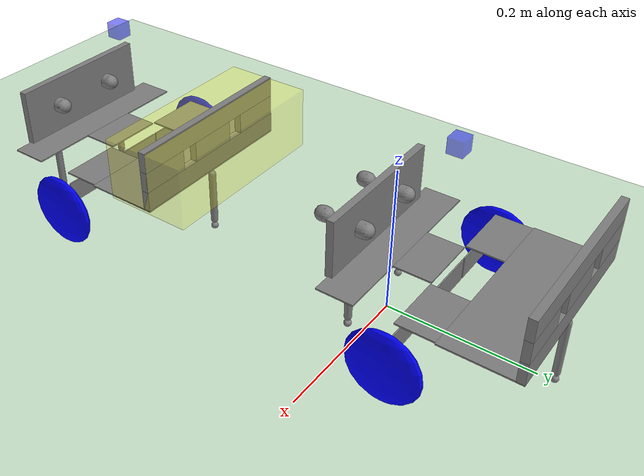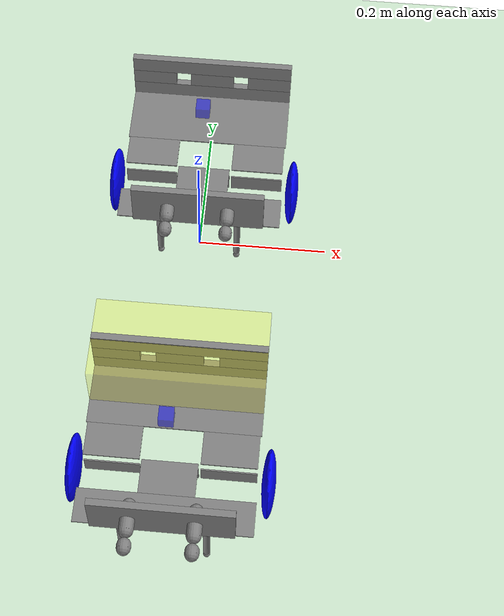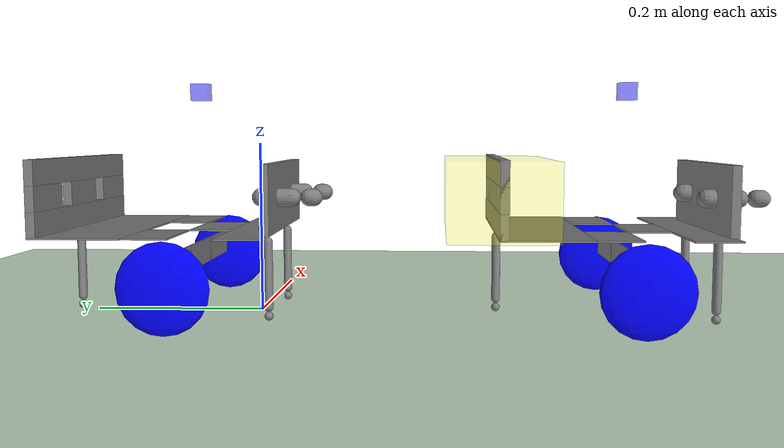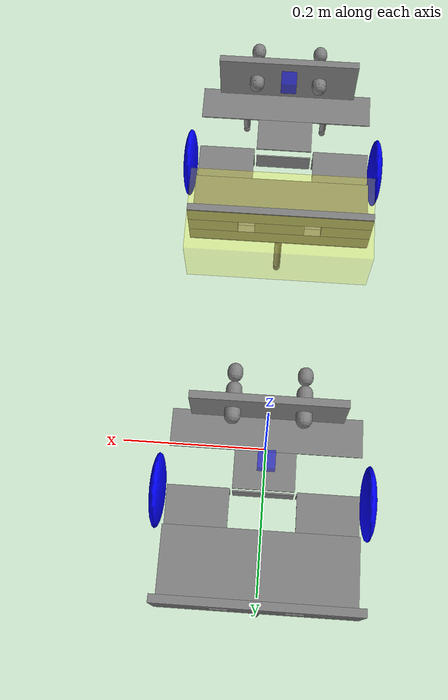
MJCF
<?xml version="1.0" ?>
<mujoco>
    <asset>
        <texture builtin="gradient" height="100" rgb1="1 1 1" rgb2="0 0 0" type="skybox" width="100"/>
        <texture builtin="flat" height="1278" mark="cross" markrgb="1 1 1" name="texgeom" random="0.01" rgb1="0.8 0.6 0.4" rgb2="0.8 0.6 0.4" type="cube" width="127"/>
        <texture builtin="checker" height="100" name="texplane" rgb1="0 0 0" rgb2="0.8 0.8 0.8" type="2d" width="100"/>
        <material name="MatPlane" reflectance="0.5" shininess="1" specular="1" texrepeat="60 60" texture="texplane"/>
        <material name="geom" texture="texgeom" texuniform="true"/>
        <mesh file="joint_socket.stl" name= "joint_socket" scale="0.001 0.001 0.001"></mesh>

    </asset>
    <size nconmax="200" njmax="1000"/>

    <default>
    </default>
    <visual>
        <map znear="0.055" zfar="20"/>
        <quality offsamples="8"/>
    </visual>
    <option timestep="0.0001" impratio="500" />

    <worldbody>

        <light cutoff="100" diffuse="1 1 1" dir="-0 0 -1.3" directional="true" exponent="1" pos="0 0 1.3" specular=".1 .1 .1"/>
        <geom material="MatPlane" name="floor" pos="0 0 0" rgba="0.8 0.9 0.8 1" size="5 5 0.1" type="plane"/>
        <body pos="0 0 0.05">
            <joint type="free" name="bot_1"/>
            <geom type="box" pos="0 0 0.05" size="0.125 0.025 0.001"/>

            <body pos="0 0.07 0.21">
                <site name = "camera_1" type="box" pos="0 0 0" size="0.01 0.01 0.01" rgba="0 0 1 0.5"/>
                <camera euler="-90 0 0" fovy="90" name="camera_front_1" pos="0 0 0"></camera>
                <camera euler="-90 180 0" fovy="90" name="camera_back_1" pos="0 0 0"></camera>
            </body>

            <body name="plug_1">
                <geom type="capsule" size="0.0105" fromto="0.0455 -0.01 0.089 0.0455 -0.045 0.089" />
                <body name="left_plug_1">
                    <joint name="plug_left_1" type="hinge" axis="0 0 1" pos="0.0455 -0.045 0.089" limited="true" range="0 90" />
                    <geom type="capsule" size="0.01" fromto="0.0455 -0.0651 0.089 0.0455 -0.07 0.089" />
                </body>
                <geom type="box" size="0.1 0.005 0.0391" pos="0 -0.024 0.089"></geom>
                <geom type="capsule" size="0.0105" fromto="-0.0455 -0.01 0.089 -0.0455 -0.045 0.089" />
                <body name="right_plug_1">
                    <joint name="plug_right_1" type="hinge" axis="0 0 1" pos="-0.0455 -0.045 0.089" limited="true" range="-90 0" />
                    <geom type="capsule" size="0.01" fromto="-0.0455 -0.0651 0.089 -0.0455 -0.07 0.089" />
                </body>
            </body>

            <body pos="0.06 -0.02 0 ">
                <joint name="support_fr_1" type="hinge" axis="1 0 0" pos="0 0 0.04" limited="true" range="-90 0"/>
                <geom type="capsule" size="0.005" fromto="0 0 0.04 0 0 -0.035" />
                <body>
                    <joint pos="0 0 -0.045" type="ball"/>
                    <geom type="sphere" size="0.005" pos="0 0 -0.045"/>
                </body>
            </body>
            <body pos="-0.06 -0.02 0 ">
                <joint name="support_fl_1" type="hinge" axis="1 0 0" pos="0 0 0.04" limited="true" range="-90 0"/>
                <geom type="capsule" size="0.005" fromto="0 0 0.04 0 0 -0.035" />
                <body>
                    <joint pos="0 0 -0.045" type="ball"/>
                    <geom type="sphere" size="0.005" pos="0 0 -0.045"/>
                </body>
            </body>

            <geom type="box" pos="0 0.05 0.05" size="0.04 0.025 0.001"/>
            <geom type="box" pos="0 0.075 0.0175" size="0.04 0.001 0.015"/>
            <body>
                <joint type="hinge" pos="0 0.075 0" axis="1 0 0" springdamper="1.5 0.01" limited="true" range="-90 90" />
                <geom type="box" pos="0.083 0.075 0.0175" size="0.04 0.001 0.015"/>
                <geom type="box" pos="-0.083 0.075 0.0175" size="0.04 0.001 0.015"/>
                <geom type="box" pos="0.083 0.1 0.05" size="0.04 0.025 0.001"/>
                <geom type="box" pos="-0.083 0.1 0.05" size="0.04 0.025 0.001"/>
                <geom type="box" pos="0 0.175 0.05" size="0.125 0.05 0.001"/>

                <body name="socket_1">
                    <geom type="box" pos="0 0.22 0.064" size="0.125 0.005 0.014"></geom>
                    <geom type="box" pos="0.091 0.22 0.092" size="0.034 0.005 0.014"></geom>
                    <geom type="box" pos="0 0.22 0.092" size="0.034 0.005 0.014"></geom>
                    <geom type="box" pos="-0.091 0.22 0.092" size="0.034 0.005 0.014"></geom>
                    <geom type="box" pos="0 0.22 0.12" size="0.125 0.005 0.014"></geom>
                </body>

                <body pos="0 0.22 0 ">
                    <joint name="support_b_1" type="hinge" axis="1 0 0" pos="0 0 0.04" limited="true" range="0 90"/>
                    <geom type="capsule" size="0.005" fromto="0 0 0.04 0 0 -0.035" />
                    <body>
                        <joint pos="0 0 -0.045" type="ball"/>
                        <geom type="sphere" size="0.005" pos="0 0 -0.045"/>
                    </body>
                </body>
            </body>
            <body>
                <joint name="RW1" type="hinge" axis="1 0 0" pos="-0.14 0.075 0"/>
                <geom type="ellipsoid" size="0.01 0.05 0.05" rgba="0 0 1 1" pos="0.14 0.075 0"/>
            </body>
            <body>
                <joint name ="LW1" type="hinge" axis="1 0 0" pos="0.14 0.075 0"/>
                <geom type="ellipsoid" size="0.01 0.05 0.05" rgba="0 0 1 1" pos="-0.14 0.075 0"/>
            </body>
        </body>

        <body pos="0 -0.5 0.05">
            <joint type="free" name="bot_2"/>
            <geom type="box" pos="0 0 0.05" size="0.125 0.025 0.001"/>

            <body pos="0 0.07 0.21">
                <site name = "camera_2" type="box" pos="0 0 0" size="0.01 0.01 0.01" rgba="0 0 1 0.5"/>
                <camera euler="-90 0 0" fovy="90" name="camera_front_2" pos="0 0 0"></camera>
                <camera euler="-90 180 0" fovy="90" name="camera_back_2" pos="0 0 0"></camera>
            </body>

            <body name="plug_2">
                <geom type="capsule" size="0.0105" fromto="0.0455 -0.01 0.089 0.0455 -0.045 0.089" />
                <body name="left_plug_2">
                    <joint name="plug_left_2" type="hinge" axis="0 0 1" pos="0.0455 -0.045 0.089" limited="true" range="0 90" />
                    <geom type="capsule" size="0.01" fromto="0.0455 -0.0651 0.089 0.0455 -0.07 0.089" />
                </body>
                <geom type="box" size="0.1 0.005 0.0391" pos="0 -0.024 0.089"></geom>
                <geom type="capsule" size="0.0105" fromto="-0.0455 -0.01 0.089 -0.0455 -0.045 0.089" />
                <body name="right_plug_2">
                    <joint name="plug_right_2" type="hinge" axis="0 0 1" pos="-0.0455 -0.045 0.089" limited="true" range="-90 0" />
                    <geom type="capsule" size="0.01" fromto="-0.0455 -0.0651 0.089 -0.0455 -0.07 0.089" />
                </body>
            </body>

            <body pos="0.06 -0.02 0 ">
                <joint name="support_fr_2" type="hinge" axis="1 0 0" pos="0 0 0.04" limited="true" range="-90 0"/>
                <geom type="capsule" size="0.005" fromto="0 0 0.04 0 0 -0.035" />
                <body>
                    <joint pos="0 0 -0.045" type="ball"/>
                    <geom type="sphere" size="0.005" pos="0 0 -0.045"/>
                </body>
            </body>
            <body pos="-0.06 -0.02 0 ">
                <joint name="support_fl_2" type="hinge" axis="1 0 0" pos="0 0 0.04" limited="true" range="-90 0"/>
                <geom type="capsule" size="0.005" fromto="0 0 0.04 0 0 -0.035" />
                <body>
                    <joint pos="0 0 -0.045" type="ball"/>
                    <geom type="sphere" size="0.005" pos="0 0 -0.045"/>
                </body>
            </body>

            <geom type="box" pos="0 0.05 0.05" size="0.04 0.025 0.001"/>
            <geom type="box" pos="0 0.075 0.0175" size="0.04 0.001 0.015"/>
            <body>
                <joint type="hinge" pos="0 0.075 0" axis="1 0 0" springdamper="1.5 0.01" limited="true" range="-90 90" />
                <geom type="box" pos="0.083 0.075 0.0175" size="0.04 0.001 0.015"/>
                <geom type="box" pos="-0.083 0.075 0.0175" size="0.04 0.001 0.015"/>
                <geom type="box" pos="0.083 0.1 0.05" size="0.04 0.025 0.001"/>
                <geom type="box" pos="-0.083 0.1 0.05" size="0.04 0.025 0.001"/>
                <geom type="box" pos="0 0.175 0.05" size="0.125 0.05 0.001"/>

                <site name="contact_sensor_1" type="box" pos="0 0.22 0.089" size="0.125 0.06 0.043" rgba="1 1 0 0.25"/>

                <body name="socket_2">
                    <geom type="box" pos="0 0.22 0.064" size="0.125 0.005 0.014"></geom>
                    <geom type="box" pos="0.091 0.22 0.092" size="0.034 0.005 0.014"></geom>
                    <geom type="box" pos="0 0.22 0.092" size="0.034 0.005 0.014"></geom>
                    <geom type="box" pos="-0.091 0.22 0.092" size="0.034 0.005 0.014"></geom>
                    <geom type="box" pos="0 0.22 0.12" size="0.125 0.005 0.014"></geom>
                </body>

                <body pos="0 0.22 0 ">
                    <joint name="support_b_2" type="hinge" axis="1 0 0" pos="0 0 0.04" limited="true" range="0 90"/>
                    <geom type="capsule" size="0.005" fromto="0 0 0.04 0 0 -0.035" />
                    <body>
                        <joint pos="0 0 -0.045" type="ball"/>
                        <geom type="sphere" size="0.005" pos="0 0 -0.045"/>
                    </body>
                </body>
            </body>
            <body>
                <joint name="RW2" type="hinge" axis="1 0 0" pos="-0.14 0.075 0"/>
                <geom type="ellipsoid" size="0.01 0.05 0.05" rgba="0 0 1 1" pos="0.14 0.075 0"/>
            </body>
            <body>
                <joint name ="LW2" type="hinge" axis="1 0 0" pos="0.14 0.075 0"/>
                <geom type="ellipsoid" size="0.01 0.05 0.05" rgba="0 0 1 1" pos="-0.14 0.075 0"/>
            </body>
        </body>

    </worldbody>
    <actuator>
        <velocity joint="LW1" ctrllimited="true" ctrlrange="-10 10"/>
        <velocity joint="RW1" ctrllimited="true" ctrlrange="-10 10"/>
        <motor joint="support_fr_1"/>
        <motor joint="support_fl_1"/>
        <motor joint="support_b_1"/>
        <motor joint="plug_left_1"/>
        <motor joint="plug_right_1"/>
        <velocity joint="LW2" ctrllimited="true" ctrlrange="-10 10"/>
        <velocity joint="RW2" ctrllimited="true" ctrlrange="-10 10"/>
        <motor joint="support_fr_2"/>
        <motor joint="support_fl_2"/>
        <motor joint="support_b_2"/>
        <motor joint="plug_left_2"/>
        <motor joint="plug_right_2"/>
    </actuator>
    <sensor>
        <touch site="contact_sensor_1"/>
    </sensor>
</mujoco>
